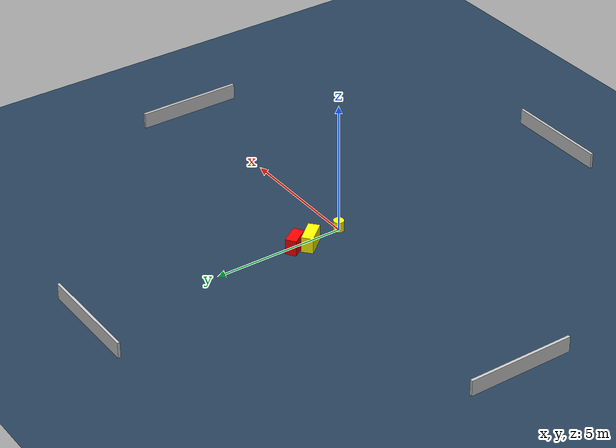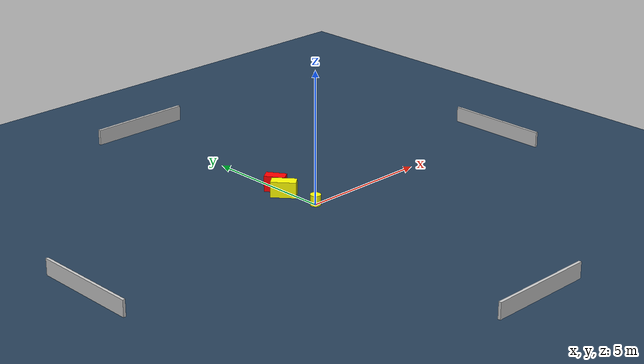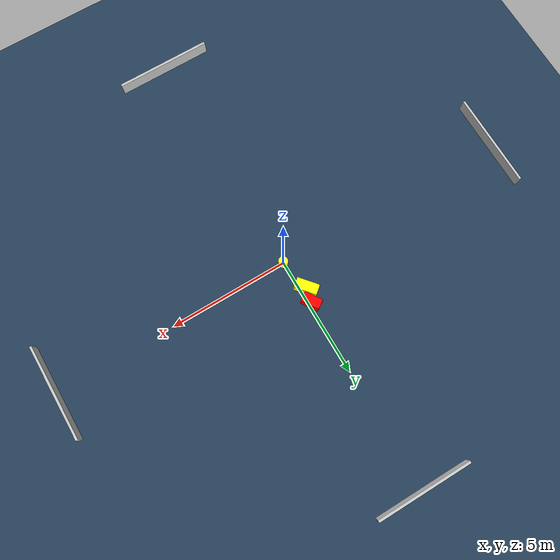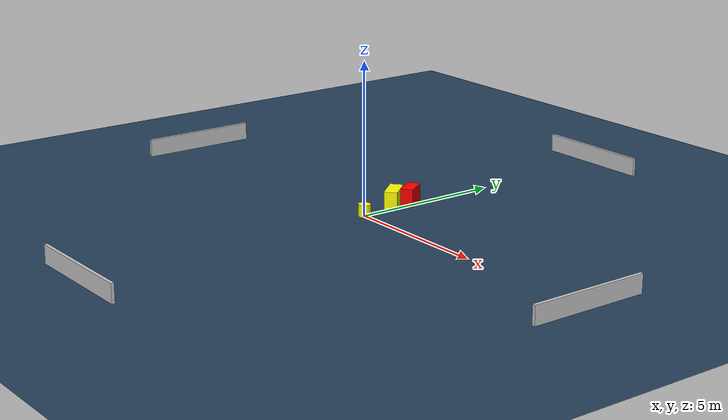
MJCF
<?xml version="1.0" ?>
<mujoco model="generated_environment">
  <option timestep="0.01" integrator="RK4" cone="elliptic"/>
  <default>
    <geom density="1"/>
  </default>
  <asset>
    <texture builtin="gradient" height="3072" name="skybox" rgb1="0.3 0.5 0.7" rgb2="0 0 0" type="skybox" width="512"/>
    <texture builtin="checker" height="300" name="groundplane" rgb1="0.2 0.3 0.4" rgb2="0.1 0.2 0.3" type="2d" width="300"/>
    <material name="groundplane" reflectance="0.2" texrepeat="5 5" texture="groundplane"/>
  </asset>
  <worldbody>
    <light dir="0 0 -1" directional="true" pos="0 0 1.5"/>
    <geom condim="3" friction="0.5 0.005 0.001" material="groundplane" name="floor" pos="0 0 0" size="0 0 0.05" type="plane"/>
    <body name="walls">
      <geom name="wall_1" condim="4" pos="-10.0 0.0 0.3" rgba="0.800000011920929 0.800000011920929 0.800000011920929 1.0" size="0.05 2.0 0.3" type="box"/>
      <geom name="wall_2" condim="4" pos="10.0 0.0 0.3" rgba="0.800000011920929 0.800000011920929 0.800000011920929 1.0" size="0.05 2.0 0.3" type="box"/>
      <geom name="wall_3" condim="4" pos="0.0 -10.0 0.3" rgba="0.800000011920929 0.800000011920929 0.800000011920929 1.0" size="2.0 0.05 0.3" type="box"/>
      <geom name="wall_4" condim="4" pos="0.0 10.0 0.3" rgba="0.800000011920929 0.800000011920929 0.800000011920929 1.0" size="2.0 0.05 0.3" type="box"/>
    </body>
    <body name="robot">
      <joint name="joint_x" type="slide" pos="0 0 0" axis="1 0 0"/>
      <joint name="joint_y" type="slide" pos="0 0 0" axis="0 1 0"/>
      <geom name="robot" type="cylinder" pos="0.0 0.0 0.2" size="0.2 0.2 0.0" mass="5.0" friction="1.0 0.005 0.0001" condim="4" rgba="1.0 1.0 0.0 1.0"/>
    </body>
    <body name="obstacle_1_movable">
      <geom name="obstacle_1_movable" condim="4" pos="-0.257608610323631 1.3645887476025118 0.3" euler="0 0 39.867335971021106" friction="0.0 0.005 0.001" rgba="1.0 1.0 0.0 1.0" size="0.21424660029242726 0.46370363999947467 0.3" type="box" mass="0.1"/>
      <joint type="free"/>
    </body>
    <body name="obstacle_2_static">
      <geom name="obstacle_2_static" condim="4" pos="-0.12885950060030388 1.9432037676323806 0.3" euler="0 0 33.33523549033215" friction="0.0 0.005 0.001" rgba="1.0 0.0 0.0 1.0" size="0.20686438661708476 0.38389170073703927 0.3" type="box"/>
    </body>
  </worldbody>
  <actuator>
    <motor name="actuator_x" joint="joint_x" gear="1" ctrlrange="-1 1"/>
    <motor name="actuator_y" joint="joint_y" gear="1" ctrlrange="-1 1"/>
  </actuator>
</mujoco>
